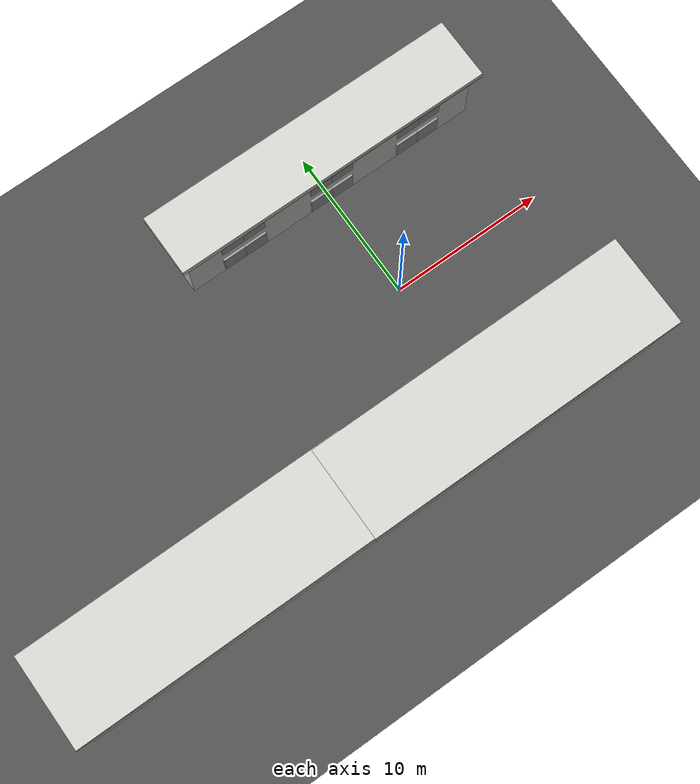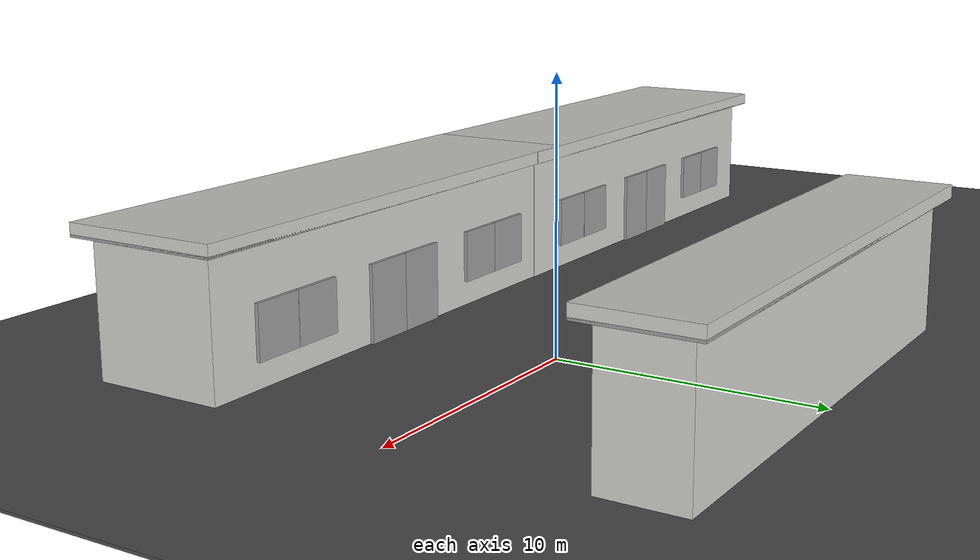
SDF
<sdf version="1.6">
 <world name="default">
  <model name="asphalt_plane">
   <pose>0.012562 0.029805 0 0 -0 0</pose>
   <static>1</static>
   <link name="link">
    <collision name="collision"><geometry><box><size>105.392 74.469 0.1</size></box></geometry></collision>
    <visual name="visual">
     <cast_shadows>0</cast_shadows>
     <geometry><box><size>105.392 74.469 0.1</size></box></geometry>
     <material>
      <script>
       <uri>model://asphalt_plane/materials/scripts</uri>
       <uri>model://asphalt_plane/materials/textures</uri>
       <name>vrc/asphalt</name>
      </script>
     </material>
    </visual>
   </link>
  </model>
  <model name="j_building">
   <pose>0.044289 -9.00814 0 0 -0 0</pose>
   <link name="Door_2">
    <collision name="Door_2_Collision">
     <geometry><box><size>2 0.17 3</size></box></geometry>
     <pose>0 0 1.5 0 -0 0</pose>
    </collision>
    <visual name="Door_2_Visual">
     <pose>0 0 1.5 0 -0 0</pose>
     <geometry><box><size>2 0.17 3</size></box></geometry>
     <material>
      <script><uri>file://media/materials/scripts/gazebo.material</uri><name>Gazebo/Grey</name></script>
     </material>
    </visual>
    <pose>-1 2.55 0 0 -0 3.13771</pose>
   </link>
   <link name="Door_3">
    <collision name="Door_3_Collision">
     <geometry><box><size>2 0.17 3</size></box></geometry>
     <pose>0 0 1.5 0 -0 0</pose>
    </collision>
    <visual name="Door_3_Visual">
     <pose>0 0 1.5 0 -0 0</pose>
     <geometry><box><size>2 0.17 3</size></box></geometry>
     <material>
      <script><uri>file://media/materials/scripts/gazebo.material</uri><name>Gazebo/Grey</name></script>
     </material>
    </visual>
    <pose>1 2.55 0 0 -0 3.13969</pose>
   </link>
   <link name="Floor_1">
    <collision name="Floor_1_Collision">
     <geometry><box><size>21 6 0.1</size></box></geometry>
     <pose>0 0 0.05 0 -0 0</pose>
    </collision>
    <visual name="Floor_1_Visual">
     <pose>0 0 0.05 0 -0 0</pose>
     <geometry><box><size>21 6 0.1</size></box></geometry>
     <material>
      <script><uri>file://media/materials/scripts/gazebo.material</uri><name>Gazebo/Grey</name></script>
      <ambient>1 1 1 1</ambient>
     </material>
    </visual>
    <pose>0 0 5 0 -0 0</pose>
   </link>
   <link name="Wall_10">
    <collision name="Wall_10_Collision">
     <geometry><box><size>21 6 0.5</size></box></geometry>
     <pose>0 0 0.25 0 -0 0</pose>
    </collision>
    <visual name="Wall_10_Visual">
     <pose>0 0 0.25 0 -0 0</pose>
     <geometry><box><size>21 6 0.5</size></box></geometry>
     <material>
      <script><uri>file://media/materials/scripts/gazebo.material</uri><name>Gazebo/CeilingTiled</name></script>
      <ambient>0.435294 0.796078 0.67451 1</ambient>
     </material>
    </visual>
    <pose>0 0 5 0 -0 0</pose>
   </link>
   <link name="Wall_7">
    <collision name="Wall_7_Collision">
     <geometry><box><size>20 5 5</size></box></geometry>
     <pose>0 0 2.5 0 -0 0</pose>
    </collision>
    <visual name="Wall_7_Visual">
     <pose>0 0 2.5 0 -0 0</pose>
     <geometry><box><size>20 5 5</size></box></geometry>
     <material>
      <script><uri>file://media/materials/scripts/gazebo.material</uri><name>Gazebo/CeilingTiled</name></script>
      <ambient>1 1 1 1</ambient>
     </material>
    </visual>
   </link>
   <link name="Window_6">
    <collision name="Window_6_Collision">
     <geometry><box><size>2 0.17 2</size></box></geometry>
     <pose>0 0 1 0 -0 0</pose>
    </collision>
    <visual name="Window_6_Visual">
     <pose>0 0 1 0 -0 0</pose>
     <geometry><box><size>2 0.17 2</size></box></geometry>
     <material>
      <script><uri>file://media/materials/scripts/gazebo.material</uri><name>Gazebo/Grey</name></script>
     </material>
    </visual>
    <pose>-7 2.55 1 0 -0 3.13833</pose>
   </link>
   <link name="Window_7">
    <collision name="Window_7_Collision">
     <geometry><box><size>2 0.17 2</size></box></geometry>
     <pose>0 0 1 0 -0 0</pose>
    </collision>
    <visual name="Window_7_Visual">
     <pose>0 0 1 0 -0 0</pose>
     <geometry><box><size>2 0.17 2</size></box></geometry>
     <material>
      <script><uri>file://media/materials/scripts/gazebo.material</uri><name>Gazebo/Grey</name></script>
     </material>
    </visual>
    <pose>-5 2.55 1 0 -0 3.14106</pose>
   </link>
   <link name="Window_8">
    <collision name="Window_8_Collision">
     <geometry><box><size>2 0.17 2</size></box></geometry>
     <pose>0 0 1 0 -0 0</pose>
    </collision>
    <visual name="Window_8_Visual">
     <pose>0 0 1 0 -0 0</pose>
     <geometry><box><size>2 0.17 2</size></box></geometry>
     <material>
      <script><uri>file://media/materials/scripts/gazebo.material</uri><name>Gazebo/Grey</name></script>
     </material>
    </visual>
    <pose>5 2.55 1 0 0 -3.13877</pose>
   </link>
   <link name="Window_9">
    <collision name="Window_9_Collision">
     <geometry><box><size>2 0.17 2</size></box></geometry>
     <pose>0 0 1 0 -0 0</pose>
    </collision>
    <visual name="Window_9_Visual">
     <pose>0 0 1 0 -0 0</pose>
     <geometry><box><size>2 0.17 2</size></box></geometry>
     <material>
      <script><uri>file://media/materials/scripts/gazebo.material</uri><name>Gazebo/Grey</name></script>
     </material>
    </visual>
    <pose>7 2.55 1 0 0 -3.13955</pose>
   </link>
   <static>1</static>
  </model>
  <model name="k_building">
   <pose>0 8.5 0 0 -0 0</pose>
   <link name="Floor_0">
    <collision name="Floor_0_Collision">
     <geometry><box><size>21 4 0.1</size></box></geometry>
     <pose>0 0 0.05 0 -0 0</pose>
    </collision>
    <visual name="Floor_0_Visual">
     <pose>0 0 0.05 0 -0 0</pose>
     <geometry><box><size>21 4 0.1</size></box></geometry>
     <material>
      <script><uri>file://media/materials/scripts/gazebo.material</uri><name>Gazebo/Grey</name></script>
      <ambient>1 1 1 1</ambient>
     </material>
    </visual>
    <pose>0 0 5 0 -0 0</pose>
   </link>
   <link name="Wall_0">
    <collision name="Wall_0_Collision">
     <geometry><box><size>20 3 5</size></box></geometry>
     <pose>0 0 2.5 0 -0 0</pose>
    </collision>
    <visual name="Wall_0_Visual">
     <pose>0 0 2.5 0 -0 0</pose>
     <geometry><box><size>20 3 5</size></box></geometry>
     <material>
      <script><uri>file://media/materials/scripts/gazebo.material</uri><name>Gazebo/CeilingTiled</name></script>
      <ambient>1 1 1 1</ambient>
     </material>
    </visual>
   </link>
   <link name="Wall_3">
    <collision name="Wall_3_Collision">
     <geometry><box><size>21 4 0.5</size></box></geometry>
     <pose>0 0 0.25 0 -0 0</pose>
    </collision>
    <visual name="Wall_3_Visual">
     <pose>0 0 0.25 0 -0 0</pose>
     <geometry><box><size>21 4 0.5</size></box></geometry>
     <material>
      <script><uri>file://media/materials/scripts/gazebo.material</uri><name>Gazebo/CeilingTiled</name></script>
      <ambient>0.435294 0.796078 0.67451 1</ambient>
     </material>
    </visual>
    <pose>0 0 5 0 -0 0</pose>
   </link>
   <link name="Window_0">
    <collision name="Window_0_Collision">
     <geometry><box><size>1.5 0.17 1.5</size></box></geometry>
     <pose>0 0 0.75 0 -0 0</pose>
    </collision>
    <visual name="Window_0_Visual">
     <pose>0 0 0.75 0 -0 0</pose>
     <geometry><box><size>1.5 0.17 1.5</size></box></geometry>
     <material>
      <script><uri>file://media/materials/scripts/gazebo.material</uri><name>Gazebo/Grey</name></script>
     </material>
    </visual>
    <pose>-7 -1.55 0.5 0 -0 0</pose>
   </link>
   <link name="Window_1">
    <collision name="Window_1_Collision">
     <geometry><box><size>1.5 0.17 1.5</size></box></geometry>
     <pose>0 0 0.75 0 -0 0</pose>
    </collision>
    <visual name="Window_1_Visual">
     <pose>0 0 0.75 0 -0 0</pose>
     <geometry><box><size>1.5 0.17 1.5</size></box></geometry>
     <material>
      <script><uri>file://media/materials/scripts/gazebo.material</uri><name>Gazebo/Grey</name></script>
     </material>
    </visual>
    <pose>-5.5 -1.55 0.5 0 -0 0</pose>
   </link>
   <link name="Window_10">
    <collision name="Window_10_Collision">
     <geometry><box><size>1.5 0.17 1.5</size></box></geometry>
     <pose>0 0 0.75 0 -0 0</pose>
    </collision>
    <visual name="Window_10_Visual">
     <pose>0 0 0.75 0 -0 0</pose>
     <geometry><box><size>1.5 0.17 1.5</size></box></geometry>
     <material>
      <script><uri>file://media/materials/scripts/gazebo.material</uri><name>Gazebo/Grey</name></script>
     </material>
    </visual>
    <pose>5.5 -1.55 3 0 -0 0</pose>
   </link>
   <link name="Window_11">
    <collision name="Window_11_Collision">
     <geometry><box><size>1.5 0.17 1.5</size></box></geometry>
     <pose>0 0 0.75 0 -0 0</pose>
    </collision>
    <visual name="Window_11_Visual">
     <pose>0 0 0.75 0 -0 0</pose>
     <geometry><box><size>1.5 0.17 1.5</size></box></geometry>
     <material>
      <script><uri>file://media/materials/scripts/gazebo.material</uri><name>Gazebo/Grey</name></script>
     </material>
    </visual>
    <pose>7 -1.55 3 0 -0 0</pose>
   </link>
   <link name="Window_2">
    <collision name="Window_2_Collision">
     <geometry><box><size>1.5 0.17 1.5</size></box></geometry>
     <pose>0 0 0.75 0 -0 0</pose>
    </collision>
    <visual name="Window_2_Visual">
     <pose>0 0 0.75 0 -0 0</pose>
     <geometry><box><size>1.5 0.17 1.5</size></box></geometry>
     <material>
      <script><uri>file://media/materials/scripts/gazebo.material</uri><name>Gazebo/Grey</name></script>
     </material>
    </visual>
    <pose>-0.75 -1.55 0.5 0 -0 0</pose>
   </link>
   <link name="Window_3">
    <collision name="Window_3_Collision">
     <geometry><box><size>1.5 0.17 1.5</size></box></geometry>
     <pose>0 0 0.75 0 -0 0</pose>
    </collision>
    <visual name="Window_3_Visual">
     <pose>0 0 0.75 0 -0 0</pose>
     <geometry><box><size>1.5 0.17 1.5</size></box></geometry>
     <material>
      <script><uri>file://media/materials/scripts/gazebo.material</uri><name>Gazebo/Grey</name></script>
     </material>
    </visual>
    <pose>0.75 -1.55 0.5 0 -0 0</pose>
   </link>
   <link name="Window_4">
    <collision name="Window_4_Collision">
     <geometry><box><size>1.5 0.17 1.5</size></box></geometry>
     <pose>0 0 0.75 0 -0 0</pose>
    </collision>
    <visual name="Window_4_Visual">
     <pose>0 0 0.75 0 -0 0</pose>
     <geometry><box><size>1.5 0.17 1.5</size></box></geometry>
     <material>
      <script><uri>file://media/materials/scripts/gazebo.material</uri><name>Gazebo/Grey</name></script>
     </material>
    </visual>
    <pose>5.5 -1.55 0.5 0 -0 0</pose>
   </link>
   <link name="Window_5">
    <collision name="Window_5_Collision">
     <geometry><box><size>1.5 0.17 1.5</size></box></geometry>
     <pose>0 0 0.75 0 -0 0</pose>
    </collision>
    <visual name="Window_5_Visual">
     <pose>0 0 0.75 0 -0 0</pose>
     <geometry><box><size>1.5 0.17 1.5</size></box></geometry>
     <material>
      <script><uri>file://media/materials/scripts/gazebo.material</uri><name>Gazebo/Grey</name></script>
     </material>
    </visual>
    <pose>7 -1.55 0.5 0 -0 0</pose>
   </link>
   <link name="Window_6">
    <collision name="Window_6_Collision">
     <geometry><box><size>1.5 0.17 1.5</size></box></geometry>
     <pose>0 0 0.75 0 -0 0</pose>
    </collision>
    <visual name="Window_6_Visual">
     <pose>0 0 0.75 0 -0 0</pose>
     <geometry><box><size>1.5 0.17 1.5</size></box></geometry>
     <material>
      <script><uri>file://media/materials/scripts/gazebo.material</uri><name>Gazebo/Grey</name></script>
     </material>
    </visual>
    <pose>-7 -1.55 3 0 -0 0</pose>
   </link>
   <link name="Window_7">
    <collision name="Window_7_Collision">
     <geometry><box><size>1.5 0.17 1.5</size></box></geometry>
     <pose>0 0 0.75 0 -0 0</pose>
    </collision>
    <visual name="Window_7_Visual">
     <pose>0 0 0.75 0 -0 0</pose>
     <geometry><box><size>1.5 0.17 1.5</size></box></geometry>
     <material>
      <script><uri>file://media/materials/scripts/gazebo.material</uri><name>Gazebo/Grey</name></script>
     </material>
    </visual>
    <pose>-5.5 -1.55 3 0 -0 0</pose>
   </link>
   <link name="Window_8">
    <collision name="Window_8_Collision">
     <geometry><box><size>1.5 0.17 1.5</size></box></geometry>
     <pose>0 0 0.75 0 -0 0</pose>
    </collision>
    <visual name="Window_8_Visual">
     <pose>0 0 0.75 0 -0 0</pose>
     <geometry><box><size>1.5 0.17 1.5</size></box></geometry>
     <material>
      <script><uri>file://media/materials/scripts/gazebo.material</uri><name>Gazebo/Grey</name></script>
     </material>
    </visual>
    <pose>-0.75 -1.55 3 0 -0 0</pose>
   </link>
   <link name="Window_9">
    <collision name="Window_9_Collision">
     <geometry><box><size>1.5 0.17 1.5</size></box></geometry>
     <pose>0 0 0.75 0 -0 0</pose>
    </collision>
    <visual name="Window_9_Visual">
     <pose>0 0 0.75 0 -0 0</pose>
     <geometry><box><size>1.5 0.17 1.5</size></box></geometry>
     <material>
      <script><uri>file://media/materials/scripts/gazebo.material</uri><name>Gazebo/Grey</name></script>
     </material>
    </visual>
    <pose>0.75 -1.55 3 0 -0 0</pose>
   </link>
   <static>1</static>
  </model>
  <model name="j_building_clone">
   <pose>-19.1468 -8.97198 0 0 -0 0</pose>
   <link name="Door_2">
    <collision name="Door_2_Collision">
     <geometry><box><size>2 0.17 3</size></box></geometry>
     <pose>0 0 1.5 0 -0 0</pose>
    </collision>
    <visual name="Door_2_Visual">
     <pose>0 0 1.5 0 -0 0</pose>
     <geometry><box><size>2 0.17 3</size></box></geometry>
     <material>
      <script><uri>file://media/materials/scripts/gazebo.material</uri><name>Gazebo/Grey</name></script>
     </material>
    </visual>
    <pose>-1 2.55 0 0 -0 3.13771</pose>
   </link>
   <link name="Door_3">
    <collision name="Door_3_Collision">
     <geometry><box><size>2 0.17 3</size></box></geometry>
     <pose>0 0 1.5 0 -0 0</pose>
    </collision>
    <visual name="Door_3_Visual">
     <pose>0 0 1.5 0 -0 0</pose>
     <geometry><box><size>2 0.17 3</size></box></geometry>
     <material>
      <script><uri>file://media/materials/scripts/gazebo.material</uri><name>Gazebo/Grey</name></script>
     </material>
    </visual>
    <pose>1 2.55 0 0 -0 3.13969</pose>
   </link>
   <link name="Floor_1">
    <collision name="Floor_1_Collision">
     <geometry><box><size>21 6 0.1</size></box></geometry>
     <pose>0 0 0.05 0 -0 0</pose>
    </collision>
    <visual name="Floor_1_Visual">
     <pose>0 0 0.05 0 -0 0</pose>
     <geometry><box><size>21 6 0.1</size></box></geometry>
     <material>
      <script><uri>file://media/materials/scripts/gazebo.material</uri><name>Gazebo/Grey</name></script>
      <ambient>1 1 1 1</ambient>
     </material>
    </visual>
    <pose>0 0 5 0 -0 0</pose>
   </link>
   <link name="Wall_10">
    <collision name="Wall_10_Collision">
     <geometry><box><size>21 6 0.5</size></box></geometry>
     <pose>0 0 0.25 0 -0 0</pose>
    </collision>
    <visual name="Wall_10_Visual">
     <pose>0 0 0.25 0 -0 0</pose>
     <geometry><box><size>21 6 0.5</size></box></geometry>
     <material>
      <script><uri>file://media/materials/scripts/gazebo.material</uri><name>Gazebo/CeilingTiled</name></script>
      <ambient>0.435294 0.796078 0.67451 1</ambient>
     </material>
    </visual>
    <pose>0 0 5 0 -0 0</pose>
   </link>
   <link name="Wall_7">
    <collision name="Wall_7_Collision">
     <geometry><box><size>20 5 5</size></box></geometry>
     <pose>0 0 2.5 0 -0 0</pose>
    </collision>
    <visual name="Wall_7_Visual">
     <pose>0 0 2.5 0 -0 0</pose>
     <geometry><box><size>20 5 5</size></box></geometry>
     <material>
      <script><uri>file://media/materials/scripts/gazebo.material</uri><name>Gazebo/CeilingTiled</name></script>
      <ambient>1 1 1 1</ambient>
     </material>
    </visual>
   </link>
   <link name="Window_6">
    <collision name="Window_6_Collision">
     <geometry><box><size>2 0.17 2</size></box></geometry>
     <pose>0 0 1 0 -0 0</pose>
    </collision>
    <visual name="Window_6_Visual">
     <pose>0 0 1 0 -0 0</pose>
     <geometry><box><size>2 0.17 2</size></box></geometry>
     <material>
      <script><uri>file://media/materials/scripts/gazebo.material</uri><name>Gazebo/Grey</name></script>
     </material>
    </visual>
    <pose>-7 2.55 1 0 -0 3.13833</pose>
   </link>
   <link name="Window_7">
    <collision name="Window_7_Collision">
     <geometry><box><size>2 0.17 2</size></box></geometry>
     <pose>0 0 1 0 -0 0</pose>
    </collision>
    <visual name="Window_7_Visual">
     <pose>0 0 1 0 -0 0</pose>
     <geometry><box><size>2 0.17 2</size></box></geometry>
     <material>
      <script><uri>file://media/materials/scripts/gazebo.material</uri><name>Gazebo/Grey</name></script>
     </material>
    </visual>
    <pose>-5 2.55 1 0 -0 3.14106</pose>
   </link>
   <link name="Window_8">
    <collision name="Window_8_Collision">
     <geometry><box><size>2 0.17 2</size></box></geometry>
     <pose>0 0 1 0 -0 0</pose>
    </collision>
    <visual name="Window_8_Visual">
     <pose>0 0 1 0 -0 0</pose>
     <geometry><box><size>2 0.17 2</size></box></geometry>
     <material>
      <script><uri>file://media/materials/scripts/gazebo.material</uri><name>Gazebo/Grey</name></script>
     </material>
    </visual>
    <pose>5 2.55 1 0 0 -3.13877</pose>
   </link>
   <link name="Window_9">
    <collision name="Window_9_Collision">
     <geometry><box><size>2 0.17 2</size></box></geometry>
     <pose>0 0 1 0 -0 0</pose>
    </collision>
    <visual name="Window_9_Visual">
     <pose>0 0 1 0 -0 0</pose>
     <geometry><box><size>2 0.17 2</size></box></geometry>
     <material>
      <script><uri>file://media/materials/scripts/gazebo.material</uri><name>Gazebo/Grey</name></script>
     </material>
    </visual>
    <pose>7 2.55 1 0 0 -3.13955</pose>
   </link>
   <static>1</static>
  </model>
 </world>
</sdf>
